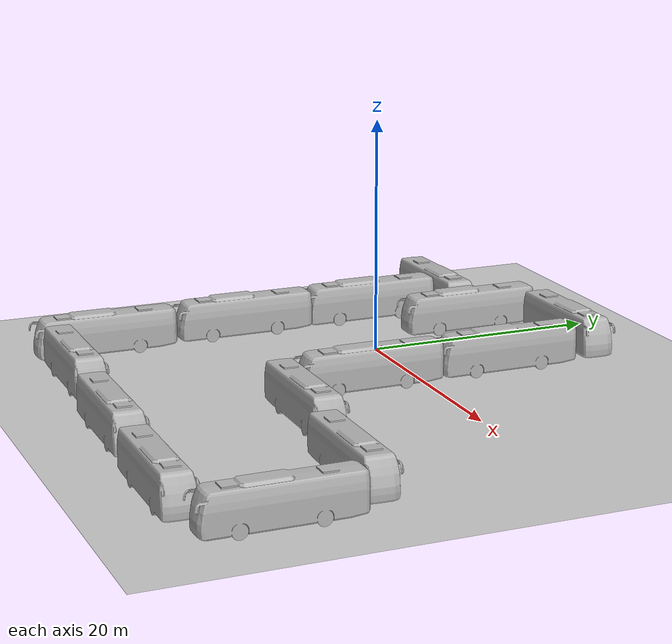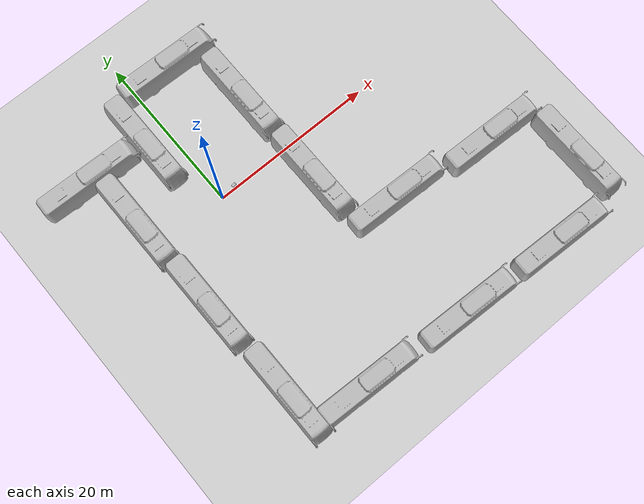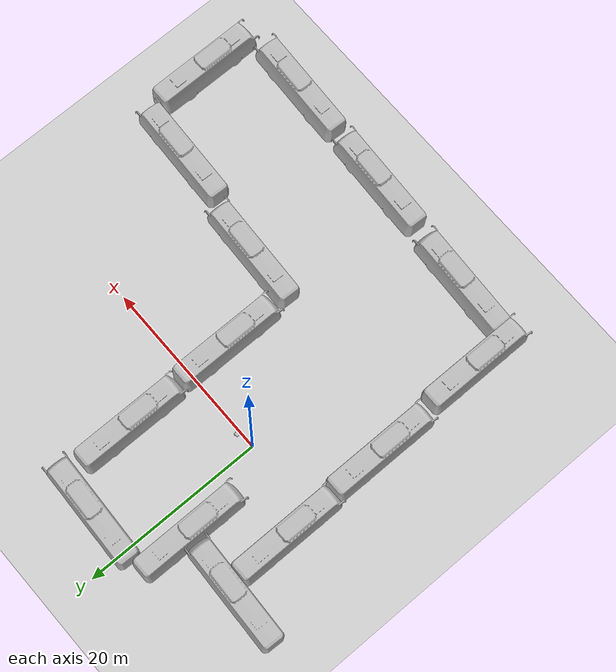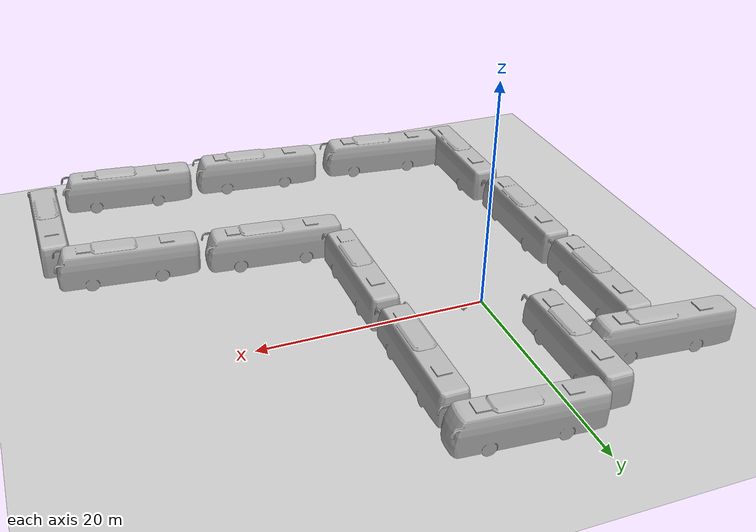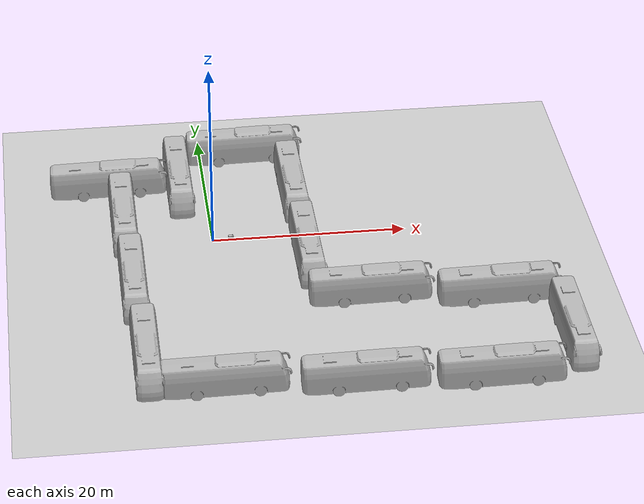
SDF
<sdf version="1.7">
 <world name="lab_indoor">
  <physics type="ode">
   <max_step_size>0.005</max_step_size>
   <real_time_factor>1</real_time_factor>
   <real_time_update_rate>200</real_time_update_rate>
   <ode>
    <solver>
     <type>quick</type>
     <iters>10</iters>
     <sor>1.3</sor>
     <use_dynamic_moi_rescaling>0</use_dynamic_moi_rescaling>
    </solver>
    <constraints>
     <cfm>0</cfm>
     <erp>0.2</erp>
     <contact_max_correcting_vel>100</contact_max_correcting_vel>
     <contact_surface_layer>0.001</contact_surface_layer>
    </constraints>
   </ode>
  </physics>
  <scene><ambient>0.6 0.6 0.6 1</ambient><background>0.7 0.7 0.7 1</background><shadows>0</shadows></scene>
  <light name="sun" type="directional">
   <cast_shadows>0</cast_shadows>
   <pose>0 0 10 0 -0 0</pose>
   <diffuse>0.8 0.8 0.8 1</diffuse>
   <specular>0.2 0.2 0.2 1</specular>
   <attenuation>
    <range>1000</range>
    <constant>0.9</constant>
    <linear>0.01</linear>
    <quadratic>0.001</quadratic>
   </attenuation>
   <direction>-0.5 0.1 -0.9</direction>
   <spot><inner_angle>0</inner_angle><outer_angle>0</outer_angle><falloff>0</falloff></spot>
  </light>
  <light name="ambient_light" type="point">
   <pose>5 5 5 0 -0 0</pose>
   <diffuse>0.3 0.3 0.3 1</diffuse>
   <specular>0.1 0.1 0.1 1</specular>
   <attenuation>
    <range>20</range>
    <constant>0.5</constant>
    <linear>0.05</linear>
    <quadratic>0.001</quadratic>
   </attenuation>
   <direction>0 0 -1</direction>
   <spot><inner_angle>0</inner_angle><outer_angle>0</outer_angle><falloff>0</falloff></spot>
  </light>
  <model name="ground_plane">
   <static>1</static>
   <link name="link">
    <collision name="collision">
     <geometry><plane><normal>0 0 1</normal><size>20 20</size></plane></geometry>
     <surface><friction><ode><mu>1</mu><mu2>1</mu2></ode></friction></surface>
    </collision>
    <visual name="visual">
     <geometry><plane><normal>0 0 1</normal><size>20 20</size></plane></geometry>
     <material>
      <ambient>0.8 0.8 0.8 1</ambient>
      <diffuse>0.8 0.8 0.8 1</diffuse>
      <specular>0.1 0.1 0.1 1</specular>
     </material>
    </visual>
   </link>
  </model>
  <plugin name="gazebo_ros_state" filename="libgazebo_ros_state.so">
   <ros><namespace>/gazebo</namespace></ros>
   <update_rate>50.0</update_rate>
  </plugin>
  <gravity>0 0 -9.8</gravity>
  <magnetic_field>6e-06 2.3e-05 -4.2e-05</magnetic_field>
  <atmosphere type="adiabatic"/>
  <spherical_coordinates>
   <surface_model>EARTH_WGS84</surface_model>
   <latitude_deg>0</latitude_deg>
   <longitude_deg>0</longitude_deg>
   <elevation>0</elevation>
   <heading_deg>0</heading_deg>
  </spherical_coordinates>
  <model name="tracked_robot">
   <link name="base_link">
    <inertial>
     <pose>-0.007512 0 -0.004812 0 -0 0</pose>
     <mass>10.65</mass>
     <inertia>
      <ixx>0.147142</ixx>
      <ixy>0</ixy>
      <ixz>-0.016365</ixz>
      <iyy>0.276792</iyy>
      <iyz>0</iyz>
      <izz>0.333962</izz>
     </inertia>
    </inertial>
    <collision name="base_link_collision"><geometry><box><size>0.5 0.35 0.2</size></box></geometry></collision>
    <collision name="base_link_fixed_joint_lump__caster_wheel_h_collision_1">
     <pose>-0.2 0 -0.1375 0 -0 0</pose>
     <geometry><sphere><radius>0.0375</radius></sphere></geometry>
     <surface>
      <contact><ode><kp>1e+06</kp><kd>100</kd><max_vel>0.01</max_vel><min_depth>0.001</min_depth></ode></contact>
      <friction><ode><mu>0</mu><mu2>0</mu2></ode></friction>
     </surface>
    </collision>
    <visual name="base_link_visual"><geometry><box><size>0.5 0.35 0.2</size></box></geometry></visual>
    <visual name="base_link_fixed_joint_lump__caster_wheel_h_visual_1">
     <pose>-0.2 0 -0.1375 0 -0 0</pose>
     <geometry><sphere><radius>0.0375</radius></sphere></geometry>
    </visual>
    <visual name="base_link_fixed_joint_lump__livox_link_visual_2">
     <pose>0.2 0 0.15 0 -0 0</pose>
     <geometry><cylinder><length>0.05</length><radius>0.03</radius></cylinder></geometry>
    </visual>
    <sensor name="imu_sensor" type="imu">
     <plugin name="imu_plugin" filename="libgazebo_ros_imu_sensor.so">
      <topicName>/livox/imu</topicName>
      <frameName>imu_link</frameName>
      <updateRateHZ>100</updateRateHZ>
      <robotNamespace>/</robotNamespace>
     </plugin>
     <always_on>1</always_on>
     <update_rate>100</update_rate>
     <visualize>1</visualize>
     <imu>
      <angular_velocity>
       <x><noise type="gaussian"><mean>0</mean><stddev>0.01</stddev></noise></x>
       <y><noise type="gaussian"><mean>0</mean><stddev>0.01</stddev></noise></y>
       <z><noise type="gaussian"><mean>0</mean><stddev>0.01</stddev></noise></z>
      </angular_velocity>
      <linear_acceleration>
       <x><noise type="gaussian"><mean>0</mean><stddev>0.1</stddev></noise></x>
       <y><noise type="gaussian"><mean>0</mean><stddev>0.1</stddev></noise></y>
       <z><noise type="gaussian"><mean>0</mean><stddev>0.1</stddev></noise></z>
      </linear_acceleration>
     </imu>
     <pose>0 0 0.05 0 -0 0</pose>
    </sensor>
    <sensor name="mid360_sensor" type="ray">
     <visualize>0</visualize>
     <always_on>1</always_on>
     <update_rate>10</update_rate>
     <plugin name="livox_laser_simulation" filename="liblivox_laser_simulation.so">
      <ros_topic>/livox/lidar</ros_topic>
      <frameName>livox_link</frameName>
      <csv_file_name>mid360-real-centr.csv</csv_file_name>
      <samples>18000</samples>
      <downsample>1</downsample>
      <publish_pointcloud_type>1</publish_pointcloud_type>
      <visualize>0</visualize>
      <debug>0</debug>
      <ray>
       <scan>
        <horizontal>
         <samples>100</samples>
         <resolution>1</resolution>
         <min_angle>-3.14159</min_angle>
         <max_angle>3.14159</max_angle>
        </horizontal>
        <vertical>
         <samples>50</samples>
         <resolution>1</resolution>
         <min_angle>-0.785</min_angle>
         <max_angle>0.785</max_angle>
        </vertical>
       </scan>
       <range><min>0.1</min><max>100.0</max><resolution>0.01</resolution></range>
      </ray>
      <robotNamespace>/</robotNamespace>
     </plugin>
     <pose>0.2 0 0.15 0 -0 0</pose>
     <ray>
      <scan>
       <horizontal>
        <samples>640</samples>
        <resolution>1</resolution>
        <min_angle>0</min_angle>
        <max_angle>0</max_angle>
       </horizontal>
       <vertical><samples>1</samples><min_angle>0</min_angle><max_angle>0</max_angle></vertical>
      </scan>
      <range><min>0</min><max>0</max></range>
     </ray>
    </sensor>
   </link>
   <joint name="left_track_joint" type="revolute">
    <pose relative_to="base_link">0.1 0.2 -0.1 1.5708 -0 0</pose>
    <parent>base_link</parent>
    <child>left_track_link</child>
    <axis>
     <xyz>0 0 1</xyz>
     <limit><lower>-1e+16</lower><upper>1e+16</upper></limit>
     <dynamics><spring_reference>0</spring_reference><spring_stiffness>0</spring_stiffness></dynamics>
    </axis>
   </joint>
   <link name="left_track_link">
    <pose relative_to="left_track_joint">0 0 0 0 -0 0</pose>
    <inertial>
     <mass>0.5</mass>
     <inertia>
      <ixx>0.000807</ixx>
      <ixy>0</ixy>
      <ixz>0</ixz>
      <iyy>0.000807</iyy>
      <iyz>0</iyz>
      <izz>0.001406</izz>
     </inertia>
    </inertial>
    <collision name="left_track_link_collision">
     <geometry><cylinder><length>0.05</length><radius>0.075</radius></cylinder></geometry>
    </collision>
    <visual name="left_track_link_visual">
     <geometry><cylinder><length>0.05</length><radius>0.075</radius></cylinder></geometry>
    </visual>
   </link>
   <joint name="right_track_joint" type="revolute">
    <pose relative_to="base_link">0.1 -0.2 -0.1 1.5708 -0 0</pose>
    <parent>base_link</parent>
    <child>right_track_link</child>
    <axis>
     <xyz>0 0 1</xyz>
     <limit><lower>-1e+16</lower><upper>1e+16</upper></limit>
     <dynamics><spring_reference>0</spring_reference><spring_stiffness>0</spring_stiffness></dynamics>
    </axis>
   </joint>
   <link name="right_track_link">
    <pose relative_to="right_track_joint">0 0 0 0 -0 0</pose>
    <inertial>
     <mass>0.5</mass>
     <inertia>
      <ixx>0.000807</ixx>
      <ixy>0</ixy>
      <ixz>0</ixz>
      <iyy>0.000807</iyy>
      <iyz>0</iyz>
      <izz>0.001406</izz>
     </inertia>
    </inertial>
    <collision name="right_track_link_collision">
     <geometry><cylinder><length>0.05</length><radius>0.075</radius></cylinder></geometry>
    </collision>
    <visual name="right_track_link_visual">
     <geometry><cylinder><length>0.05</length><radius>0.075</radius></cylinder></geometry>
    </visual>
   </link>
   <plugin name="diff_drive_controller" filename="libgazebo_ros_diff_drive.so">
    <commandTopic>cmd_vel</commandTopic>
    <odometryTopic>odom</odometryTopic>
    <robotBaseFrame>base_link</robotBaseFrame>
    <leftJoint>right_track_joint</leftJoint>
    <rightJoint>left_track_joint</rightJoint>
    <wheelSeparation>0.35</wheelSeparation>
    <wheelDiameter>0.15</wheelDiameter>
    <maxWheelTorque>5</maxWheelTorque>
    <maxWheelAcceleration>0.5</maxWheelAcceleration>
    <odometrySource>1</odometrySource>
    <publishOdomTF>0</publishOdomTF>
    <publishWheelTF>0</publishWheelTF>
    <updateRate>50.0</updateRate>
    <legacyMode>0</legacyMode>
    <robotNamespace>/</robotNamespace>
   </plugin>
   <frame name="caster_joint_h" attached_to="base_link"><pose>-0.2 0 -0.1375 0 -0 0</pose></frame>
   <frame name="caster_wheel_h" attached_to="caster_joint_h"/>
   <frame name="imu_joint" attached_to="base_link"><pose>0 0 0.05 0 -0 0</pose></frame>
   <frame name="imu_link" attached_to="imu_joint"/>
   <frame name="livox_joint" attached_to="base_link"><pose>0.2 0 0.15 0 -0 0</pose></frame>
   <frame name="livox_link" attached_to="livox_joint"/>
   <pose>1.9117 0.398452 0.174478 0.0002 -0.002564 0.126899</pose>
  </model>
  <model name="bus">
   <static>1</static>
   <link name="link">
    <collision name="collision">
     <geometry><mesh><scale>0.01 0.01 0.01</scale><uri>model://bus/meshes/bus.obj</uri></mesh></geometry>
    </collision>
    <visual name="visual">
     <geometry><mesh><scale>0.01 0.01 0.01</scale><uri>model://bus/meshes/bus.obj</uri></mesh></geometry>
    </visual>
   </link>
   <pose>-9.0138 3.20281 0 0 -0 0</pose>
  </model>
  <model name="bus_0">
   <static>1</static>
   <link name="link">
    <collision name="collision">
     <geometry><mesh><scale>0.01 0.01 0.01</scale><uri>model://bus/meshes/bus.obj</uri></mesh></geometry>
    </collision>
    <visual name="visual">
     <geometry><mesh><scale>0.01 0.01 0.01</scale><uri>model://bus/meshes/bus.obj</uri></mesh></geometry>
    </visual>
   </link>
   <pose>-8.68562 -8.89949 0 0 -0 0</pose>
  </model>
  <model name="bus_1">
   <static>1</static>
   <link name="link">
    <collision name="collision">
     <geometry><mesh><scale>0.01 0.01 0.01</scale><uri>model://bus/meshes/bus.obj</uri></mesh></geometry>
    </collision>
    <visual name="visual">
     <geometry><mesh><scale>0.01 0.01 0.01</scale><uri>model://bus/meshes/bus.obj</uri></mesh></geometry>
    </visual>
   </link>
   <pose>-2.7716 10.0699 0 0 -0 0</pose>
  </model>
  <model name="bus_2">
   <static>1</static>
   <link name="link">
    <collision name="collision">
     <geometry><mesh><scale>0.01 0.01 0.01</scale><uri>model://bus/meshes/bus.obj</uri></mesh></geometry>
    </collision>
    <visual name="visual">
     <geometry><mesh><scale>0.01 0.01 0.01</scale><uri>model://bus/meshes/bus.obj</uri></mesh></geometry>
    </visual>
   </link>
   <pose>9.10888 7.71436 0 0 -0 0</pose>
  </model>
  <model name="bus_3">
   <static>1</static>
   <link name="link">
    <collision name="collision">
     <geometry><mesh><scale>0.01 0.01 0.01</scale><uri>model://bus/meshes/bus.obj</uri></mesh></geometry>
    </collision>
    <visual name="visual">
     <geometry><mesh><scale>0.01 0.01 0.01</scale><uri>model://bus/meshes/bus.obj</uri></mesh></geometry>
    </visual>
   </link>
   <pose>9.30847 -4.67243 0 0 -0 0</pose>
  </model>
  <model name="bus_4">
   <static>1</static>
   <link name="link">
    <collision name="collision">
     <geometry><mesh><scale>0.01 0.01 0.01</scale><uri>model://bus/meshes/bus.obj</uri></mesh></geometry>
    </collision>
    <visual name="visual">
     <geometry><mesh><scale>0.01 0.01 0.01</scale><uri>model://bus/meshes/bus.obj</uri></mesh></geometry>
    </visual>
   </link>
   <pose>14.8025 -12.5028 0 -0.037258 -0.00139 1.53352</pose>
  </model>
  <model name="bus_4_clone">
   <static>1</static>
   <link name="link">
    <collision name="collision">
     <geometry><mesh><scale>0.01 0.01 0.01</scale><uri>model://bus/meshes/bus.obj</uri></mesh></geometry>
    </collision>
    <visual name="visual">
     <geometry><mesh><scale>0.01 0.01 0.01</scale><uri>model://bus/meshes/bus.obj</uri></mesh></geometry>
    </visual>
   </link>
   <pose>27.5723 -14.0158 0 -0.037258 -0.00139 1.53352</pose>
  </model>
  <model name="bus_2_clone">
   <static>1</static>
   <link name="link">
    <collision name="collision">
     <geometry><mesh><scale>0.01 0.01 0.01</scale><uri>model://bus/meshes/bus.obj</uri></mesh></geometry>
    </collision>
    <visual name="visual">
     <geometry><mesh><scale>0.01 0.01 0.01</scale><uri>model://bus/meshes/bus.obj</uri></mesh></geometry>
    </visual>
   </link>
   <pose>33.3556 -21.7751 0 0 -0 0</pose>
  </model>
  <model name="bus_4_clone_0">
   <static>1</static>
   <link name="link">
    <collision name="collision">
     <geometry><mesh><scale>0.01 0.01 0.01</scale><uri>model://bus/meshes/bus.obj</uri></mesh></geometry>
    </collision>
    <visual name="visual">
     <geometry><mesh><scale>0.01 0.01 0.01</scale><uri>model://bus/meshes/bus.obj</uri></mesh></geometry>
    </visual>
   </link>
   <pose>25.31 -27.7001 0 -0.037258 -0.00139 1.53352</pose>
  </model>
  <model name="bus_4_clone_1">
   <static>1</static>
   <link name="link">
    <collision name="collision">
     <geometry><mesh><scale>0.01 0.01 0.01</scale><uri>model://bus/meshes/bus.obj</uri></mesh></geometry>
    </collision>
    <visual name="visual">
     <geometry><mesh><scale>0.01 0.01 0.01</scale><uri>model://bus/meshes/bus.obj</uri></mesh></geometry>
    </visual>
   </link>
   <pose>12.3511 -27.0983 0 -0.037258 -0.00139 1.53352</pose>
  </model>
  <model name="bus_4_clone_2">
   <static>1</static>
   <link name="link">
    <collision name="collision">
     <geometry><mesh><scale>0.01 0.01 0.01</scale><uri>model://bus/meshes/bus.obj</uri></mesh></geometry>
    </collision>
    <visual name="visual">
     <geometry><mesh><scale>0.01 0.01 0.01</scale><uri>model://bus/meshes/bus.obj</uri></mesh></geometry>
    </visual>
   </link>
   <pose>-0.991118 -26.2216 0 -0.037258 -0.00139 1.53352</pose>
  </model>
  <model name="bus_0_clone">
   <static>1</static>
   <link name="link">
    <collision name="collision">
     <geometry><mesh><scale>0.01 0.01 0.01</scale><uri>model://bus/meshes/bus.obj</uri></mesh></geometry>
    </collision>
    <visual name="visual">
     <geometry><mesh><scale>0.01 0.01 0.01</scale><uri>model://bus/meshes/bus.obj</uri></mesh></geometry>
    </visual>
   </link>
   <pose>-8.194 -21.6318 0 0 -0 0</pose>
  </model>
  <model name="bus_4_clone_3">
   <static>1</static>
   <link name="link">
    <collision name="collision">
     <geometry><mesh><scale>0.01 0.01 0.01</scale><uri>model://bus/meshes/bus.obj</uri></mesh></geometry>
    </collision>
    <visual name="visual">
     <geometry><mesh><scale>0.01 0.01 0.01</scale><uri>model://bus/meshes/bus.obj</uri></mesh></geometry>
    </visual>
   </link>
   <pose>4.80719 15.9689 0 -0.037258 -0.00139 1.53352</pose>
  </model>
  <model name="bus_4_clone_4">
   <static>1</static>
   <link name="link">
    <collision name="collision">
     <geometry><mesh><scale>0.01 0.01 0.01</scale><uri>model://bus/meshes/bus.obj</uri></mesh></geometry>
    </collision>
    <visual name="visual">
     <geometry><mesh><scale>0.01 0.01 0.01</scale><uri>model://bus/meshes/bus.obj</uri></mesh></geometry>
    </visual>
   </link>
   <pose>-10.0547 10.6234 0 -0.037258 -0.00139 1.53352</pose>
  </model>
 </world>
</sdf>
